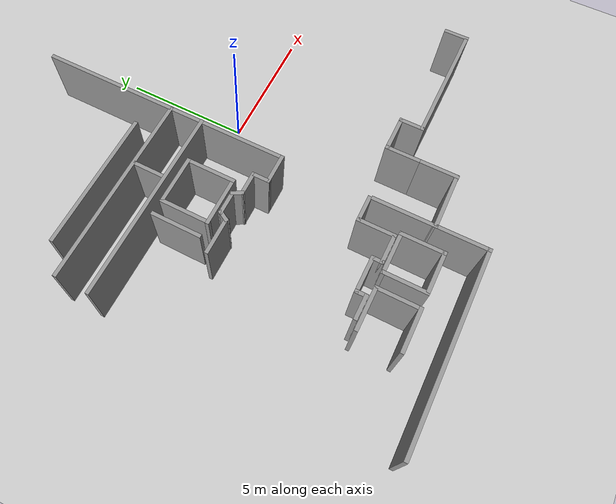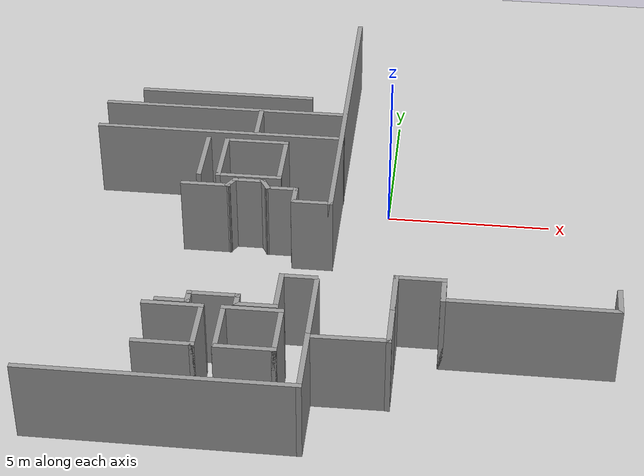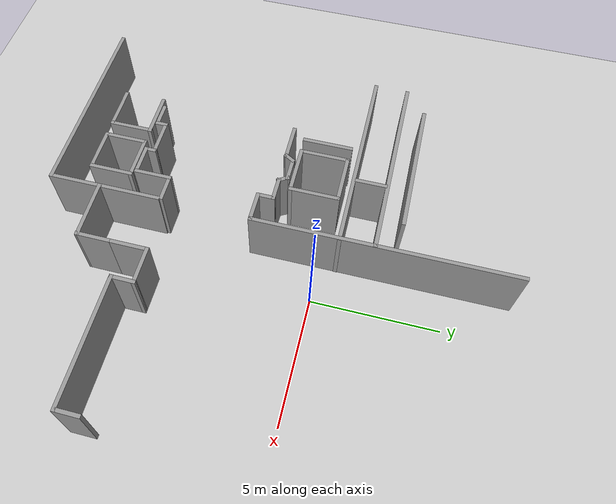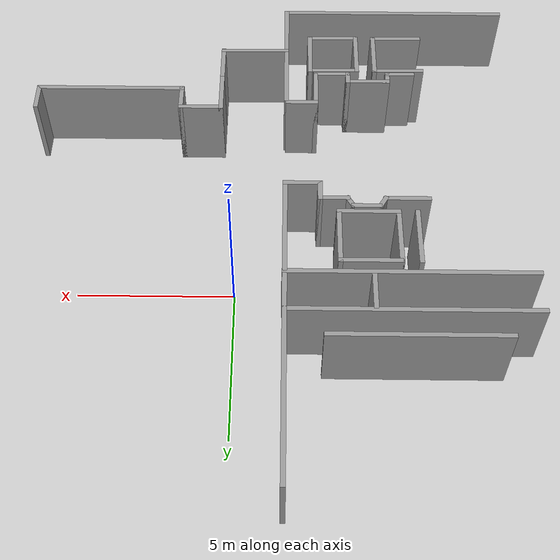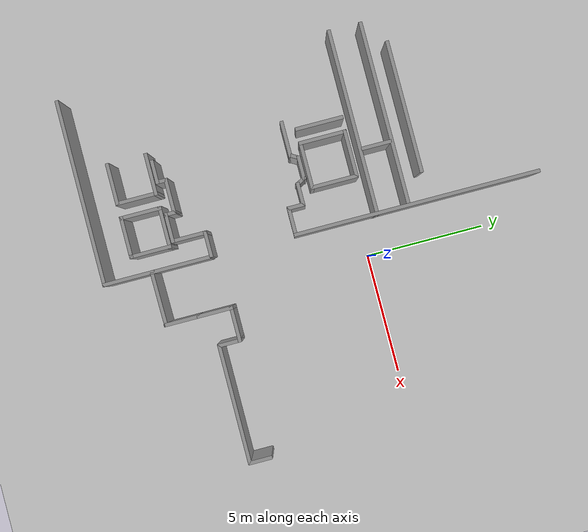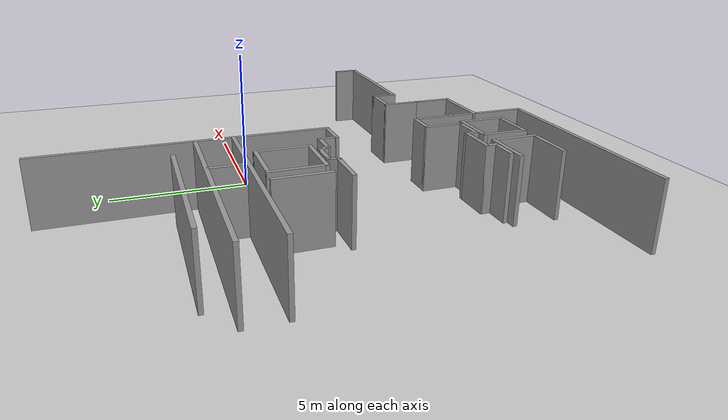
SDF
<sdf version="1.6">
 <world name="default">
  <model name="ground_plane">
   <static>1</static>
   <link name="link">
    <collision name="collision">
     <geometry><plane><normal>0 0 1</normal><size>100 100</size></plane></geometry>
     <surface>
      <contact><collide_bitmask>65535</collide_bitmask></contact>
      <friction><ode><mu>100</mu><mu2>50</mu2></ode></friction>
     </surface>
    </collision>
    <visual name="visual">
     <cast_shadows>0</cast_shadows>
     <geometry><plane><normal>0 0 1</normal><size>100 100</size></plane></geometry>
     <material>
      <script><uri>file://media/materials/scripts/gazebo.material</uri><name>Gazebo/Grey</name></script>
     </material>
    </visual>
   </link>
  </model>
  <model name="Tsudanuma_2-3-with_door">
   <pose>11.7222 12.8329 0 0 -0 0</pose>
   <link name="Wall_150">
    <collision name="Wall_150_Collision">
     <geometry><box><size>1.5 0.15 2.5</size></box></geometry>
     <pose>0 0 1.25 0 -0 0</pose>
    </collision>
    <visual name="Wall_150_Visual">
     <pose>0 0 1.25 0 -0 0</pose>
     <geometry><box><size>1.5 0.15 2.5</size></box></geometry>
     <material>
      <script><uri>file://media/materials/scripts/gazebo.material</uri><name>Gazebo/Grey</name></script>
      <ambient>1 1 1 1</ambient>
     </material>
     <meta><layer>0</layer></meta>
    </visual>
    <pose>-17.1324 -14.9577 0 0 -0 0</pose>
   </link>
   <link name="Wall_151">
    <collision name="Wall_151_Collision">
     <geometry><box><size>0.5 0.15 2.5</size></box></geometry>
     <pose>0 0 1.25 0 -0 0</pose>
    </collision>
    <visual name="Wall_151_Visual">
     <pose>0 0 1.25 0 -0 0</pose>
     <geometry><box><size>0.5 0.15 2.5</size></box></geometry>
     <material>
      <script><uri>file://media/materials/scripts/gazebo.material</uri><name>Gazebo/Grey</name></script>
      <ambient>1 1 1 1</ambient>
     </material>
     <meta><layer>0</layer></meta>
    </visual>
    <pose>-16.3699 -14.8061 0 0 -0 1.0472</pose>
   </link>
   <link name="Wall_152">
    <collision name="Wall_152_Collision">
     <geometry><box><size>1 0.15 2.5</size></box></geometry>
     <pose>0 0 1.25 0 -0 0</pose>
    </collision>
    <visual name="Wall_152_Visual">
     <pose>0 0 1.25 0 -0 0</pose>
     <geometry><box><size>1 0.15 2.5</size></box></geometry>
     <material>
      <script><uri>file://media/materials/scripts/gazebo.material</uri><name>Gazebo/Grey</name></script>
      <ambient>1 1 1 1</ambient>
     </material>
     <meta><layer>0</layer></meta>
    </visual>
    <pose>-15.8574 -14.6546 0 0 -0 0</pose>
   </link>
   <link name="Wall_153">
    <collision name="Wall_153_Collision">
     <geometry><box><size>0.5 0.15 2.5</size></box></geometry>
     <pose>0 0 1.25 0 -0 0</pose>
    </collision>
    <visual name="Wall_153_Visual">
     <pose>0 0 1.25 0 -0 0</pose>
     <geometry><box><size>0.5 0.15 2.5</size></box></geometry>
     <material>
      <script><uri>file://media/materials/scripts/gazebo.material</uri><name>Gazebo/Grey</name></script>
      <ambient>1 1 1 1</ambient>
     </material>
     <meta><layer>0</layer></meta>
    </visual>
    <pose>-15.3449 -14.8061 0 0 -0 -1.0472</pose>
   </link>
   <link name="Wall_154">
    <collision name="Wall_154_Collision">
     <geometry><box><size>1 0.15 2.5</size></box></geometry>
     <pose>0 0 1.25 0 -0 0</pose>
    </collision>
    <visual name="Wall_154_Visual">
     <pose>0 0 1.25 0 -0 0</pose>
     <geometry><box><size>1 0.15 2.5</size></box></geometry>
     <material>
      <script><uri>file://media/materials/scripts/gazebo.material</uri><name>Gazebo/Grey</name></script>
      <ambient>1 1 1 1</ambient>
     </material>
     <meta><layer>0</layer></meta>
    </visual>
    <pose>-14.8324 -14.9577 0 0 -0 0</pose>
   </link>
   <link name="Wall_155">
    <collision name="Wall_155_Collision">
     <geometry><box><size>0.75 0.15 2.5</size></box></geometry>
     <pose>0 0 1.25 0 -0 0</pose>
    </collision>
    <visual name="Wall_155_Visual">
     <pose>0 0 1.25 0 -0 0</pose>
     <geometry><box><size>0.75 0.15 2.5</size></box></geometry>
     <material>
      <script><uri>file://media/materials/scripts/gazebo.material</uri><name>Gazebo/Grey</name></script>
      <ambient>1 1 1 1</ambient>
     </material>
     <meta><layer>0</layer></meta>
    </visual>
    <pose>-14.4074 -15.2577 0 0 -0 -1.5708</pose>
   </link>
   <link name="Wall_156">
    <collision name="Wall_156_Collision">
     <geometry><box><size>1.25 0.15 2.5</size></box></geometry>
     <pose>0 0 1.25 0 -0 0</pose>
    </collision>
    <visual name="Wall_156_Visual">
     <pose>0 0 1.25 0 -0 0</pose>
     <geometry><box><size>1.25 0.15 2.5</size></box></geometry>
     <material>
      <script><uri>file://media/materials/scripts/gazebo.material</uri><name>Gazebo/Grey</name></script>
      <ambient>1 1 1 1</ambient>
     </material>
     <meta><layer>0</layer></meta>
    </visual>
    <pose>-13.8574 -15.5577 0 0 -0 0</pose>
   </link>
   <link name="Wall_157">
    <collision name="Wall_157_Collision">
     <geometry><box><size>10.25 0.15 2.5</size></box></geometry>
     <pose>0 0 1.25 0 -0 0</pose>
    </collision>
    <visual name="Wall_157_Visual">
     <pose>0 0 1.25 0 -0 0</pose>
     <geometry><box><size>10.25 0.15 2.5</size></box></geometry>
     <material>
      <script><uri>file://media/materials/scripts/gazebo.material</uri><name>Gazebo/Grey</name></script>
      <ambient>1 1 1 1</ambient>
     </material>
     <meta><layer>0</layer></meta>
    </visual>
    <pose>-13.3074 -10.5077 0 0 -0 1.5708</pose>
   </link>
   <link name="Wall_160">
    <collision name="Wall_160_Collision">
     <geometry><box><size>5.5 0.15 2.5</size></box></geometry>
     <pose>0 0 1.25 0 -0 0</pose>
    </collision>
    <visual name="Wall_160_Visual">
     <pose>0 0 1.25 0 -0 0</pose>
     <geometry><box><size>5.5 0.15 2.5</size></box></geometry>
     <material>
      <script><uri>file://media/materials/scripts/gazebo.material</uri><name>Gazebo/Grey</name></script>
      <ambient>1 1 1 1</ambient>
     </material>
     <meta><layer>0</layer></meta>
    </visual>
    <pose>-17.1919 -10.0068 0 0 -0 3.14159</pose>
   </link>
   <link name="Wall_165">
    <collision name="Wall_165_Collision">
     <geometry><box><size>7.7 0.15 2.5</size></box></geometry>
     <pose>0 0 1.25 0 -0 0</pose>
    </collision>
    <visual name="Wall_165_Visual">
     <pose>0 0 1.25 0 -0 0</pose>
     <geometry><box><size>7.7 0.15 2.5</size></box></geometry>
     <material>
      <script><uri>file://media/materials/scripts/gazebo.material</uri><name>Gazebo/Grey</name></script>
      <ambient>1 1 1 1</ambient>
     </material>
     <meta><layer>0</layer></meta>
    </visual>
    <pose>-17.1019 -10.8525 0 0 -0 0</pose>
   </link>
   <link name="Wall_167">
    <collision name="Wall_167_Collision">
     <geometry><box><size>7.75 0.15 2.5</size></box></geometry>
     <pose>0 0 1.25 0 -0 0</pose>
    </collision>
    <visual name="Wall_167_Visual">
     <pose>0 0 1.25 0 -0 0</pose>
     <geometry><box><size>7.75 0.15 2.5</size></box></geometry>
     <material>
      <script><uri>file://media/materials/scripts/gazebo.material</uri><name>Gazebo/Grey</name></script>
      <ambient>1 1 1 1</ambient>
     </material>
     <meta><layer>0</layer></meta>
    </visual>
    <pose>-17.0935 -12.1708 0 0 -0 0</pose>
   </link>
   <link name="Wall_169">
    <collision name="Wall_169_Collision">
     <geometry><box><size>1.25 0.15 2.5</size></box></geometry>
     <pose>0 0 1.25 0 -0 0</pose>
    </collision>
    <visual name="Wall_169_Visual">
     <pose>0 0 1.25 0 -0 0</pose>
     <geometry><box><size>1.25 0.15 2.5</size></box></geometry>
     <material>
      <script><uri>file://media/materials/scripts/gazebo.material</uri><name>Gazebo/Grey</name></script>
      <ambient>1 1 1 1</ambient>
     </material>
     <meta><layer>0</layer></meta>
    </visual>
    <pose>-15.9785 -11.4951 0 0 -0 -1.5708</pose>
   </link>
   <link name="Wall_183">
    <collision name="Wall_183_Collision">
     <geometry><box><size>1 0.15 2.5</size></box></geometry>
     <pose>0 0 1.25 0 -0 0</pose>
    </collision>
    <visual name="Wall_183_Visual">
     <pose>0 0 1.25 0 -0 0</pose>
     <geometry><box><size>1 0.15 2.5</size></box></geometry>
     <material>
      <script><uri>file://media/materials/scripts/gazebo.material</uri><name>Gazebo/Grey</name></script>
      <ambient>1 1 1 1</ambient>
     </material>
     <meta><layer>0</layer></meta>
    </visual>
    <pose>-17.1985 -20.4122 0 0 -0 0</pose>
   </link>
   <link name="Wall_184">
    <collision name="Wall_184_Collision">
     <geometry><box><size>0.502135 0.15 2.5</size></box></geometry>
     <pose>0 0 1.25 0 -0 0</pose>
    </collision>
    <visual name="Wall_184_Visual">
     <pose>0 0 1.25 0 -0 0</pose>
     <geometry><box><size>0.502135 0.15 2.5</size></box></geometry>
     <material>
      <script><uri>file://media/materials/scripts/gazebo.material</uri><name>Gazebo/Grey</name></script>
      <ambient>1 1 1 1</ambient>
     </material>
     <meta><layer>0</layer></meta>
    </visual>
    <pose>-16.7721 -20.2361 0 0 -0 1.5708</pose>
   </link>
   <link name="Wall_185">
    <collision name="Wall_185_Collision">
     <geometry><box><size>1.5 0.15 2.5</size></box></geometry>
     <pose>0 0 1.25 0 -0 0</pose>
    </collision>
    <visual name="Wall_185_Visual">
     <pose>0 0 1.25 0 -0 0</pose>
     <geometry><box><size>1.5 0.15 2.5</size></box></geometry>
     <material>
      <script><uri>file://media/materials/scripts/gazebo.material</uri><name>Gazebo/Grey</name></script>
      <ambient>1 1 1 1</ambient>
     </material>
     <meta><layer>0</layer></meta>
    </visual>
    <pose>-16.0971 -20.06 0 0 -0 0</pose>
   </link>
   <link name="Wall_186">
    <collision name="Wall_186_Collision">
     <geometry><box><size>0.5 0.15 2.5</size></box></geometry>
     <pose>0 0 1.25 0 -0 0</pose>
    </collision>
    <visual name="Wall_186_Visual">
     <pose>0 0 1.25 0 -0 0</pose>
     <geometry><box><size>0.5 0.15 2.5</size></box></geometry>
     <material>
      <script><uri>file://media/materials/scripts/gazebo.material</uri><name>Gazebo/Grey</name></script>
      <ambient>1 1 1 1</ambient>
     </material>
     <meta><layer>0</layer></meta>
    </visual>
    <pose>-15.4221 -20.235 0 0 -0 -1.5708</pose>
   </link>
   <link name="Wall_187">
    <collision name="Wall_187_Collision">
     <geometry><box><size>1.25 0.15 2.5</size></box></geometry>
     <pose>0 0 1.25 0 -0 0</pose>
    </collision>
    <visual name="Wall_187_Visual">
     <pose>0 0 1.25 0 -0 0</pose>
     <geometry><box><size>1.25 0.15 2.5</size></box></geometry>
     <material>
      <script><uri>file://media/materials/scripts/gazebo.material</uri><name>Gazebo/Grey</name></script>
      <ambient>1 1 1 1</ambient>
     </material>
     <meta><layer>0</layer></meta>
    </visual>
    <pose>-14.8721 -20.41 0 0 -0 0</pose>
   </link>
   <link name="Wall_188">
    <collision name="Wall_188_Collision">
     <geometry><box><size>1.5 0.15 2.5</size></box></geometry>
     <pose>0 0 1.25 0 -0 0</pose>
    </collision>
    <visual name="Wall_188_Visual">
     <pose>0 0 1.25 0 -0 0</pose>
     <geometry><box><size>1.5 0.15 2.5</size></box></geometry>
     <material>
      <script><uri>file://media/materials/scripts/gazebo.material</uri><name>Gazebo/Grey</name></script>
      <ambient>1 1 1 1</ambient>
     </material>
     <meta><layer>0</layer></meta>
    </visual>
    <pose>-14.3221 -19.735 0 0 -0 1.5708</pose>
   </link>
   <link name="Wall_189">
    <collision name="Wall_189_Collision">
     <geometry><box><size>1.1 0.15 2.5</size></box></geometry>
     <pose>0 0 1.25 0 -0 0</pose>
    </collision>
    <visual name="Wall_189_Visual">
     <pose>0 0 1.25 0 -0 0</pose>
     <geometry><box><size>1.1 0.15 2.5</size></box></geometry>
     <material>
      <script><uri>file://media/materials/scripts/gazebo.material</uri><name>Gazebo/Grey</name></script>
      <ambient>1 1 1 1</ambient>
     </material>
     <meta><layer>0</layer></meta>
    </visual>
    <pose>-13.8471 -19.06 0 0 -0 0</pose>
   </link>
   <link name="Wall_192">
    <collision name="Wall_192_Collision">
     <geometry><box><size>2.5 0.15 2.5</size></box></geometry>
     <pose>0 0 1.25 0 -0 0</pose>
    </collision>
    <visual name="Wall_192_Visual">
     <pose>0 0 1.25 0 -0 0</pose>
     <geometry><box><size>2.5 0.15 2.5</size></box></geometry>
     <material>
      <script><uri>file://media/materials/scripts/gazebo.material</uri><name>Gazebo/Grey</name></script>
      <ambient>1 1 1 1</ambient>
     </material>
     <meta><layer>0</layer></meta>
    </visual>
    <pose>-13.3221 -20.365 0 0 -0 1.5708</pose>
   </link>
   <link name="Wall_194">
    <collision name="Wall_194_Collision">
     <geometry><box><size>1.5 0.15 2.5</size></box></geometry>
     <pose>0 0 1.25 0 -0 0</pose>
    </collision>
    <visual name="Wall_194_Visual">
     <pose>0 0 1.25 0 -0 0</pose>
     <geometry><box><size>1.5 0.15 2.5</size></box></geometry>
     <material>
      <script><uri>file://media/materials/scripts/gazebo.material</uri><name>Gazebo/Grey</name></script>
      <ambient>1 1 1 1</ambient>
     </material>
     <meta><layer>0</layer></meta>
    </visual>
    <pose>-11.1311 -19.4885 0 0 -0 1.5708</pose>
   </link>
   <link name="Wall_195">
    <collision name="Wall_195_Collision">
     <geometry><box><size>1.5 0.15 2.5</size></box></geometry>
     <pose>0 0 1.25 0 -0 0</pose>
    </collision>
    <visual name="Wall_195_Visual">
     <pose>0 0 1.25 0 -0 0</pose>
     <geometry><box><size>1.5 0.15 2.5</size></box></geometry>
     <material>
      <script><uri>file://media/materials/scripts/gazebo.material</uri><name>Gazebo/Grey</name></script>
      <ambient>1 1 1 1</ambient>
     </material>
     <meta><layer>0</layer></meta>
    </visual>
    <pose>-10.4561 -18.8135 0 0 -0 0</pose>
   </link>
   <link name="Wall_196">
    <collision name="Wall_196_Collision">
     <geometry><box><size>1 0.15 2.5</size></box></geometry>
     <pose>0 0 1.25 0 -0 0</pose>
    </collision>
    <visual name="Wall_196_Visual">
     <pose>0 0 1.25 0 -0 0</pose>
     <geometry><box><size>1 0.15 2.5</size></box></geometry>
     <material>
      <script><uri>file://media/materials/scripts/gazebo.material</uri><name>Gazebo/Grey</name></script>
      <ambient>1 1 1 1</ambient>
     </material>
     <meta><layer>0</layer></meta>
    </visual>
    <pose>-9.78112 -19.2385 0 0 -0 -1.5708</pose>
   </link>
   <link name="Wall_197">
    <collision name="Wall_197_Collision">
     <geometry><box><size>5 0.15 2.5</size></box></geometry>
     <pose>0 0 1.25 0 -0 0</pose>
    </collision>
    <visual name="Wall_197_Visual">
     <pose>0 0 1.25 0 -0 0</pose>
     <geometry><box><size>5 0.15 2.5</size></box></geometry>
     <material>
      <script><uri>file://media/materials/scripts/gazebo.material</uri><name>Gazebo/Grey</name></script>
      <ambient>1 1 1 1</ambient>
     </material>
     <meta><layer>0</layer></meta>
    </visual>
    <pose>-7.35612 -19.6635 0 0 -0 0</pose>
   </link>
   <link name="Wall_198">
    <collision name="Wall_198_Collision">
     <geometry><box><size>1 0.15 2.5</size></box></geometry>
     <pose>0 0 1.25 0 -0 0</pose>
    </collision>
    <visual name="Wall_198_Visual">
     <pose>0 0 1.25 0 -0 0</pose>
     <geometry><box><size>1 0.15 2.5</size></box></geometry>
     <material>
      <script><uri>file://media/materials/scripts/gazebo.material</uri><name>Gazebo/Grey</name></script>
      <ambient>1 1 1 1</ambient>
     </material>
     <meta><layer>0</layer></meta>
    </visual>
    <pose>-4.93112 -19.2385 0 0 -0 1.5708</pose>
   </link>
   <link name="Wall_5">
    <collision name="Wall_5_Collision">
     <geometry><box><size>7.75 0.15 2.5</size></box></geometry>
     <pose>0 0 1.25 0 -0 0</pose>
    </collision>
    <visual name="Wall_5_Visual">
     <pose>0 0 1.25 0 -0 0</pose>
     <geometry><box><size>7.75 0.15 2.5</size></box></geometry>
     <material>
      <script><uri>file://media/materials/scripts/gazebo.material</uri><name>Gazebo/Grey</name></script>
      <ambient>1 1 1 1</ambient>
     </material>
     <meta><layer>0</layer></meta>
    </visual>
    <pose>-17.1221 -23.51 0 0 -0 0</pose>
   </link>
   <link name="Wall_540">
    <collision name="Wall_540_Collision">
     <geometry><box><size>2 0.15 2.5</size></box></geometry>
     <pose>0 0 1.25 0 -0 0</pose>
    </collision>
    <visual name="Wall_540_Visual">
     <pose>0 0 1.25 0 -0 0</pose>
     <geometry><box><size>2 0.15 2.5</size></box></geometry>
     <material>
      <script><uri>file://media/materials/scripts/gazebo.material</uri><name>Gazebo/Grey</name></script>
      <ambient>1 1 1 1</ambient>
     </material>
     <meta><layer>0</layer></meta>
    </visual>
    <pose>-17.4158 -13.4992 0 0 -0 1.5708</pose>
   </link>
   <link name="Wall_544">
    <collision name="Wall_544_Collision">
     <geometry><box><size>2 0.15 2.5</size></box></geometry>
     <pose>0 0 1.25 0 -0 0</pose>
    </collision>
    <visual name="Wall_544_Visual">
     <pose>0 0 1.25 0 -0 0</pose>
     <geometry><box><size>2 0.15 2.5</size></box></geometry>
     <material>
      <script><uri>file://media/materials/scripts/gazebo.material</uri><name>Gazebo/Grey</name></script>
      <ambient>1 1 1 1</ambient>
     </material>
     <meta><layer>0</layer></meta>
    </visual>
    <pose>-16.8289 -13.509 0 0 -0 1.5708</pose>
   </link>
   <link name="Wall_545">
    <collision name="Wall_545_Collision">
     <geometry><box><size>2 0.15 2.5</size></box></geometry>
     <pose>0 0 1.25 0 -0 0</pose>
    </collision>
    <visual name="Wall_545_Visual">
     <pose>0 0 1.25 0 -0 0</pose>
     <geometry><box><size>2 0.15 2.5</size></box></geometry>
     <material>
      <script><uri>file://media/materials/scripts/gazebo.material</uri><name>Gazebo/Grey</name></script>
      <ambient>1 1 1 1</ambient>
     </material>
     <meta><layer>0</layer></meta>
    </visual>
    <pose>-15.9039 -12.584 0 0 -0 0</pose>
   </link>
   <link name="Wall_546">
    <collision name="Wall_546_Collision">
     <geometry><box><size>2 0.15 2.5</size></box></geometry>
     <pose>0 0 1.25 0 -0 0</pose>
    </collision>
    <visual name="Wall_546_Visual">
     <pose>0 0 1.25 0 -0 0</pose>
     <geometry><box><size>2 0.15 2.5</size></box></geometry>
     <material>
      <script><uri>file://media/materials/scripts/gazebo.material</uri><name>Gazebo/Grey</name></script>
      <ambient>1 1 1 1</ambient>
     </material>
     <meta><layer>0</layer></meta>
    </visual>
    <pose>-14.9789 -13.509 0 0 -0 -1.5708</pose>
   </link>
   <link name="Wall_547">
    <collision name="Wall_547_Collision">
     <geometry><box><size>2 0.15 2.5</size></box></geometry>
     <pose>0 0 1.25 0 -0 0</pose>
    </collision>
    <visual name="Wall_547_Visual">
     <pose>0 0 1.25 0 -0 0</pose>
     <geometry><box><size>2 0.15 2.5</size></box></geometry>
     <material>
      <script><uri>file://media/materials/scripts/gazebo.material</uri><name>Gazebo/Grey</name></script>
      <ambient>1 1 1 1</ambient>
     </material>
     <meta><layer>0</layer></meta>
    </visual>
    <pose>-15.9039 -14.434 0 0 -0 3.14159</pose>
   </link>
   <link name="Wall_554">
    <collision name="Wall_554_Collision">
     <geometry><box><size>1.75 0.15 2.5</size></box></geometry>
     <pose>0 0 1.25 0 -0 0</pose>
    </collision>
    <visual name="Wall_554_Visual">
     <pose>0 0 1.25 0 -0 0</pose>
     <geometry><box><size>1.75 0.15 2.5</size></box></geometry>
     <material>
      <script><uri>file://media/materials/scripts/gazebo.material</uri><name>Gazebo/Grey</name></script>
      <ambient>1 1 1 1</ambient>
     </material>
     <meta><layer>0</layer></meta>
    </visual>
    <pose>-17.1499 -22.1833 0 0 -0 0</pose>
   </link>
   <link name="Wall_555">
    <collision name="Wall_555_Collision">
     <geometry><box><size>1.75 0.15 2.5</size></box></geometry>
     <pose>0 0 1.25 0 -0 0</pose>
    </collision>
    <visual name="Wall_555_Visual">
     <pose>0 0 1.25 0 -0 0</pose>
     <geometry><box><size>1.75 0.15 2.5</size></box></geometry>
     <material>
      <script><uri>file://media/materials/scripts/gazebo.material</uri><name>Gazebo/Grey</name></script>
      <ambient>1 1 1 1</ambient>
     </material>
     <meta><layer>0</layer></meta>
    </visual>
    <pose>-16.3499 -21.3833 0 0 -0 1.5708</pose>
   </link>
   <link name="Wall_556">
    <collision name="Wall_556_Collision">
     <geometry><box><size>1.75 0.15 2.5</size></box></geometry>
     <pose>0 0 1.25 0 -0 0</pose>
    </collision>
    <visual name="Wall_556_Visual">
     <pose>0 0 1.25 0 -0 0</pose>
     <geometry><box><size>1.75 0.15 2.5</size></box></geometry>
     <material>
      <script><uri>file://media/materials/scripts/gazebo.material</uri><name>Gazebo/Grey</name></script>
      <ambient>1 1 1 1</ambient>
     </material>
     <meta><layer>0</layer></meta>
    </visual>
    <pose>-17.1499 -20.5833 0 0 -0 3.14159</pose>
   </link>
   <link name="Wall_560">
    <collision name="Wall_560_Collision">
     <geometry><box><size>1.75 0.15 2.5</size></box></geometry>
     <pose>0 0 1.25 0 -0 0</pose>
    </collision>
    <visual name="Wall_560_Visual">
     <pose>0 0 1.25 0 -0 0</pose>
     <geometry><box><size>1.75 0.15 2.5</size></box></geometry>
     <material>
      <script><uri>file://media/materials/scripts/gazebo.material</uri><name>Gazebo/Grey</name></script>
      <ambient>1 1 1 1</ambient>
     </material>
     <meta><layer>0</layer></meta>
    </visual>
    <pose>-15.7383 -21.3807 0 0 -0 -1.5708</pose>
   </link>
   <link name="Wall_562">
    <collision name="Wall_562_Collision">
     <geometry><box><size>1.75 0.15 2.5</size></box></geometry>
     <pose>0 0 1.25 0 -0 0</pose>
    </collision>
    <visual name="Wall_562_Visual">
     <pose>0 0 1.25 0 -0 0</pose>
     <geometry><box><size>1.75 0.15 2.5</size></box></geometry>
     <material>
      <script><uri>file://media/materials/scripts/gazebo.material</uri><name>Gazebo/Grey</name></script>
      <ambient>1 1 1 1</ambient>
     </material>
     <meta><layer>0</layer></meta>
    </visual>
    <pose>-14.9383 -22.1807 0 0 -0 0</pose>
   </link>
   <link name="Wall_563">
    <collision name="Wall_563_Collision">
     <geometry><box><size>1.75 0.15 2.5</size></box></geometry>
     <pose>0 0 1.25 0 -0 0</pose>
    </collision>
    <visual name="Wall_563_Visual">
     <pose>0 0 1.25 0 -0 0</pose>
     <geometry><box><size>1.75 0.15 2.5</size></box></geometry>
     <material>
      <script><uri>file://media/materials/scripts/gazebo.material</uri><name>Gazebo/Grey</name></script>
      <ambient>1 1 1 1</ambient>
     </material>
     <meta><layer>0</layer></meta>
    </visual>
    <pose>-14.1383 -21.3807 0 0 -0 1.5708</pose>
   </link>
   <link name="Wall_564">
    <collision name="Wall_564_Collision">
     <geometry><box><size>1.75 0.15 2.5</size></box></geometry>
     <pose>0 0 1.25 0 -0 0</pose>
    </collision>
    <visual name="Wall_564_Visual">
     <pose>0 0 1.25 0 -0 0</pose>
     <geometry><box><size>1.75 0.15 2.5</size></box></geometry>
     <material>
      <script><uri>file://media/materials/scripts/gazebo.material</uri><name>Gazebo/Grey</name></script>
      <ambient>1 1 1 1</ambient>
     </material>
     <meta><layer>0</layer></meta>
    </visual>
    <pose>-14.9383 -20.5807 0 0 -0 3.14159</pose>
   </link>
   <link name="Wall_6">
    <collision name="Wall_6_Collision">
     <geometry><box><size>2.15372 0.15 2.5</size></box></geometry>
     <pose>0 0 1.25 0 -0 0</pose>
    </collision>
    <visual name="Wall_6_Visual">
     <pose>0 0 1.25 0 -0 0</pose>
     <geometry><box><size>2.15372 0.15 2.5</size></box></geometry>
     <material>
      <script><uri>file://media/materials/scripts/gazebo.material</uri><name>Gazebo/Grey</name></script>
      <ambient>1 1 1 1</ambient>
     </material>
     <meta><layer>0</layer></meta>
    </visual>
    <pose>-13.3221 -22.5082 0 0 -0 1.5708</pose>
   </link>
   <link name="Wall_7">
    <collision name="Wall_7_Collision">
     <geometry><box><size>2.3411 0.15 2.5</size></box></geometry>
     <pose>0 0 1.25 0 -0 0</pose>
    </collision>
    <visual name="Wall_7_Visual">
     <pose>0 0 1.25 0 -0 0</pose>
     <geometry><box><size>2.3411 0.15 2.5</size></box></geometry>
     <material>
      <script><uri>file://media/materials/scripts/gazebo.material</uri><name>Gazebo/Grey</name></script>
      <ambient>1 1 1 1</ambient>
     </material>
     <meta><layer>0</layer></meta>
    </visual>
    <pose>-12.2266 -21.5267 0 0 -0 0.012099</pose>
   </link>
   <link name="Wall_9">
    <collision name="Wall_9_Collision">
     <geometry><box><size>1.5 0.15 2.5</size></box></geometry>
     <pose>0 0 1.25 0 -0 0</pose>
    </collision>
    <visual name="Wall_9_Visual">
     <pose>0 0 1.25 0 -0 0</pose>
     <geometry><box><size>1.5 0.15 2.5</size></box></geometry>
     <material>
      <script><uri>file://media/materials/scripts/gazebo.material</uri><name>Gazebo/Grey</name></script>
      <ambient>1 1 1 1</ambient>
     </material>
     <meta><layer>0</layer></meta>
    </visual>
    <pose>-11.1311 -20.8517 0 0 -0 1.5708</pose>
   </link>
   <static>1</static>
  </model>
 </world>
</sdf>
